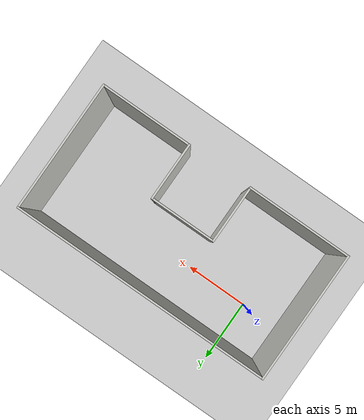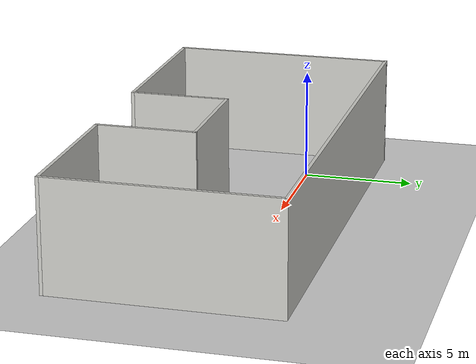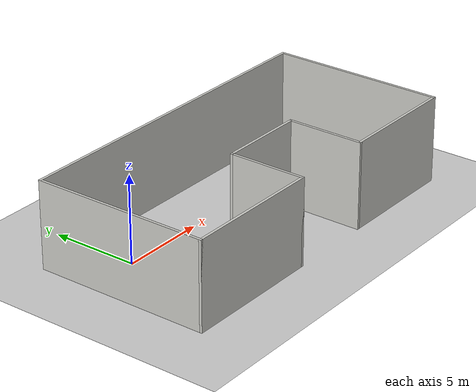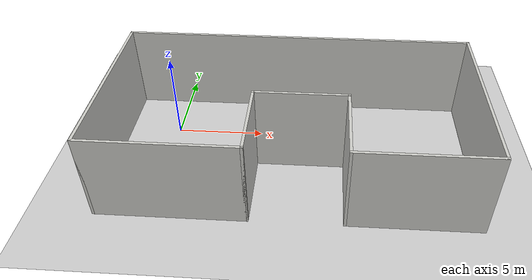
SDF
<sdf version="1.6">
 <world name="default">
  <light name="sun" type="directional">
   <pose>0 0 10 0 -0 0</pose>
   <diffuse>0.8 0.8 0.8 1</diffuse>
   <specular>0.2 0.2 0.2 1</specular>
   <attenuation>
    <range>1000</range>
    <constant>0.9</constant>
    <linear>0.01</linear>
    <quadratic>0.001</quadratic>
   </attenuation>
   <direction>-0.5 0.1 -0.9</direction>
  </light>
  <model name="ground_plane">
   <static>1</static>
   <link name="link">
    <collision name="collision">
     <geometry><plane><normal>0 0 1</normal><size>100 100</size></plane></geometry>
     <surface><friction><ode><mu>100</mu><mu2>50</mu2></ode></friction></surface>
    </collision>
    <visual name="visual">
     <cast_shadows>0</cast_shadows>
     <geometry><plane><normal>0 0 1</normal><size>100 100</size></plane></geometry>
     <material>
      <script><uri>file://media/materials/scripts/gazebo.material</uri><name>Gazebo/Grey</name></script>
     </material>
    </visual>
    <velocity_decay><linear>0</linear><angular>0</angular></velocity_decay>
   </link>
  </model>
  <physics name="default_physics" default="0" type="ode">
   <max_step_size>0.001</max_step_size>
   <real_time_factor>1</real_time_factor>
   <real_time_update_rate>1000</real_time_update_rate>
  </physics>
  <scene><ambient>0.4 0.4 0.4 1</ambient><background>0.7 0.7 0.7 1</background><shadows>1</shadows></scene>
  <spherical_coordinates>
   <surface_model>EARTH_WGS84</surface_model>
   <latitude_deg>0</latitude_deg>
   <longitude_deg>0</longitude_deg>
   <elevation>0</elevation>
   <heading_deg>0</heading_deg>
  </spherical_coordinates>
  <gravity>0 0 -9.8</gravity>
  <magnetic_field>6e-06 2.3e-05 -4.2e-05</magnetic_field>
  <atmosphere type="adiabatic"/>
  <audio><device>default</device></audio>
  <model name="room_high5">
   <pose>6.95661 -1.89791 0 0 -0 0</pose>
   <link name="Wall_0">
    <collision name="Wall_0_Collision">
     <geometry><box><size>10.15 0.15 5</size></box></geometry>
     <pose>0 0 2.5 0 -0 0</pose>
    </collision>
    <visual name="Wall_0_Visual">
     <pose>0 0 2.5 0 -0 0</pose>
     <geometry><box><size>10.15 0.15 5</size></box></geometry>
     <material>
      <script><uri>file://media/materials/scripts/gazebo.material</uri><name>Gazebo/CeilingTiled</name></script>
      <ambient>1 1 1 1</ambient>
     </material>
     <meta><layer>0</layer></meta>
    </visual>
    <pose>-10 0 0 0 -0 1.5708</pose>
   </link>
   <link name="Wall_11">
    <collision name="Wall_11_Collision">
     <geometry><box><size>8.15 0.15 5</size></box></geometry>
     <pose>0 0 2.5 0 -0 0</pose>
    </collision>
    <visual name="Wall_11_Visual">
     <pose>0 0 2.5 0 -0 0</pose>
     <geometry><box><size>8.15 0.15 5</size></box></geometry>
     <material>
      <script><uri>file://media/materials/scripts/gazebo.material</uri><name>Gazebo/CeilingTiled</name></script>
      <ambient>1 1 1 1</ambient>
     </material>
     <meta><layer>0</layer></meta>
    </visual>
    <pose>-6 -5 0 0 -0 0</pose>
   </link>
   <link name="Wall_13">
    <collision name="Wall_13_Collision">
     <geometry><box><size>4.5 0.15 5</size></box></geometry>
     <pose>0 0 2.5 0 -0 0</pose>
    </collision>
    <visual name="Wall_13_Visual">
     <pose>0 0 2.5 0 -0 0</pose>
     <geometry><box><size>4.5 0.15 5</size></box></geometry>
     <material>
      <script><uri>file://media/materials/scripts/gazebo.material</uri><name>Gazebo/CeilingTiled</name></script>
      <ambient>1 1 1 1</ambient>
     </material>
     <meta><layer>0</layer></meta>
    </visual>
    <pose>-2 -2.825 0 0 -0 -1.5708</pose>
   </link>
   <link name="Wall_15">
    <collision name="Wall_15_Collision">
     <geometry><box><size>4.5 0.15 5</size></box></geometry>
     <pose>0 0 2.5 0 -0 0</pose>
    </collision>
    <visual name="Wall_15_Visual">
     <pose>0 0 2.5 0 -0 0</pose>
     <geometry><box><size>4.5 0.15 5</size></box></geometry>
     <material>
      <script><uri>file://media/materials/scripts/gazebo.material</uri><name>Gazebo/CeilingTiled</name></script>
      <ambient>1 1 1 1</ambient>
     </material>
     <meta><layer>0</layer></meta>
    </visual>
    <pose>3 -2.825 0 0 -0 -1.5708</pose>
   </link>
   <link name="Wall_2">
    <collision name="Wall_2_Collision">
     <geometry><box><size>20.15 0.15 5</size></box></geometry>
     <pose>0 0 2.5 0 -0 0</pose>
    </collision>
    <visual name="Wall_2_Visual">
     <pose>0 0 2.5 0 -0 0</pose>
     <geometry><box><size>20.15 0.15 5</size></box></geometry>
     <material>
      <script><uri>file://media/materials/scripts/gazebo.material</uri><name>Gazebo/CeilingTiled</name></script>
      <ambient>1 1 1 1</ambient>
     </material>
     <meta><layer>0</layer></meta>
    </visual>
    <pose>0 5 0 0 -0 0</pose>
   </link>
   <link name="Wall_4">
    <collision name="Wall_4_Collision">
     <geometry><box><size>10.15 0.15 5</size></box></geometry>
     <pose>0 0 2.5 0 -0 0</pose>
    </collision>
    <visual name="Wall_4_Visual">
     <pose>0 0 2.5 0 -0 0</pose>
     <geometry><box><size>10.15 0.15 5</size></box></geometry>
     <material>
      <script><uri>file://media/materials/scripts/gazebo.material</uri><name>Gazebo/CeilingTiled</name></script>
      <ambient>1 1 1 1</ambient>
     </material>
     <meta><layer>0</layer></meta>
    </visual>
    <pose>10 0 0 0 -0 -1.5708</pose>
   </link>
   <link name="Wall_6">
    <collision name="Wall_6_Collision">
     <geometry><box><size>7.15 0.15 5</size></box></geometry>
     <pose>0 0 2.5 0 -0 0</pose>
    </collision>
    <visual name="Wall_6_Visual">
     <pose>0 0 2.5 0 -0 0</pose>
     <geometry><box><size>7.15 0.15 5</size></box></geometry>
     <material>
      <script><uri>file://media/materials/scripts/gazebo.material</uri><name>Gazebo/CeilingTiled</name></script>
      <ambient>1 1 1 1</ambient>
     </material>
     <meta><layer>0</layer></meta>
    </visual>
    <pose>6.5 -5 0 0 -0 3.14159</pose>
   </link>
   <link name="Wall_9">
    <collision name="Wall_9_Collision">
     <geometry><box><size>5.15 0.15 5</size></box></geometry>
     <pose>0 0 2.5 0 -0 0</pose>
    </collision>
    <visual name="Wall_9_Visual">
     <pose>0 0 2.5 0 -0 0</pose>
     <geometry><box><size>5.15 0.15 5</size></box></geometry>
     <material>
      <script><uri>file://media/materials/scripts/gazebo.material</uri><name>Gazebo/CeilingTiled</name></script>
      <ambient>1 1 1 1</ambient>
     </material>
     <meta><layer>0</layer></meta>
    </visual>
    <pose>0.5 -0.65 0 0 -0 3.14159</pose>
   </link>
   <static>1</static>
  </model>
 </world>
</sdf>
